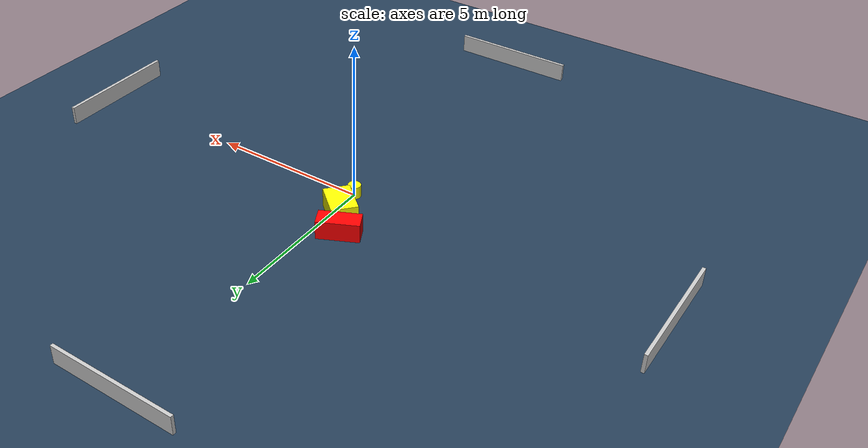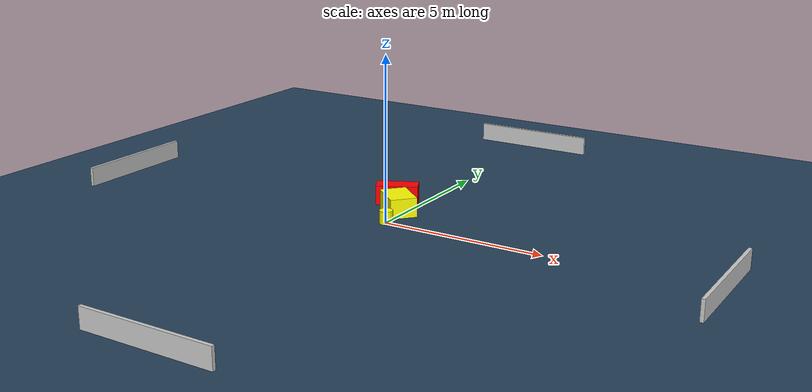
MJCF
<?xml version="1.0" ?>
<mujoco model="generated_environment">
  <option timestep="0.01" integrator="RK4" cone="elliptic"/>
  <default>
    <geom density="1"/>
  </default>
  <asset>
    <texture builtin="gradient" height="3072" name="skybox" rgb1="0.3 0.5 0.7" rgb2="0 0 0" type="skybox" width="512"/>
    <texture builtin="checker" height="300" name="groundplane" rgb1="0.2 0.3 0.4" rgb2="0.1 0.2 0.3" type="2d" width="300"/>
    <material name="groundplane" reflectance="0.2" texrepeat="5 5" texture="groundplane"/>
  </asset>
  <worldbody>
    <light dir="0 0 -1" directional="true" pos="0 0 1.5"/>
    <geom condim="3" friction="0.5 0.005 0.001" material="groundplane" name="floor" pos="0 0 0" size="0 0 0.05" type="plane"/>
    <body name="walls">
      <geom name="wall_1" condim="4" pos="-10.0 0.0 0.3" rgba="0.800000011920929 0.800000011920929 0.800000011920929 1.0" size="0.05 2.0 0.3" type="box"/>
      <geom name="wall_2" condim="4" pos="10.0 0.0 0.3" rgba="0.800000011920929 0.800000011920929 0.800000011920929 1.0" size="0.05 2.0 0.3" type="box"/>
      <geom name="wall_3" condim="4" pos="0.0 -10.0 0.3" rgba="0.800000011920929 0.800000011920929 0.800000011920929 1.0" size="2.0 0.05 0.3" type="box"/>
      <geom name="wall_4" condim="4" pos="0.0 10.0 0.3" rgba="0.800000011920929 0.800000011920929 0.800000011920929 1.0" size="2.0 0.05 0.3" type="box"/>
    </body>
    <body name="robot">
      <joint name="joint_x" type="slide" pos="0 0 0" axis="1 0 0"/>
      <joint name="joint_y" type="slide" pos="0 0 0" axis="0 1 0"/>
      <geom name="robot" type="cylinder" pos="0.0 0.0 0.2" size="0.2 0.2 0.0" mass="5.0" friction="1.0 0.005 0.0001" condim="4" rgba="1.0 1.0 0.0 1.0"/>
    </body>
    <body name="obstacle_1_movable">
      <geom name="obstacle_1_movable" condim="4" pos="-0.20367347288282886 1.0067735109641245 0.3" euler="0 0 138.9301884415953" friction="0.0 0.005 0.001" rgba="1.0 1.0 0.0 1.0" size="0.5582053017178089 0.41137192313997517 0.3" type="box" mass="0.1"/>
      <joint type="free"/>
    </body>
    <body name="obstacle_2_static">
      <geom name="obstacle_2_static" condim="4" pos="-0.7429045552330175 1.8262591258428824 0.3" euler="0 0 116.1357997656232" friction="0.0 0.005 0.001" rgba="1.0 0.0 0.0 1.0" size="0.2894240009176327 0.6484348517475885 0.3" type="box"/>
    </body>
  </worldbody>
  <actuator>
    <motor name="actuator_x" joint="joint_x" gear="1" ctrlrange="-1 1"/>
    <motor name="actuator_y" joint="joint_y" gear="1" ctrlrange="-1 1"/>
  </actuator>
</mujoco>
